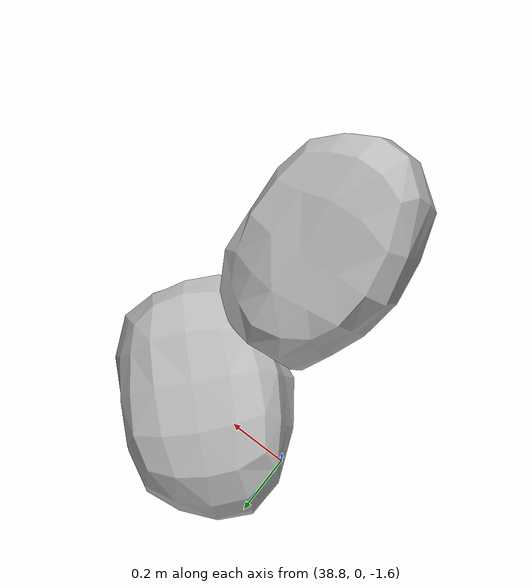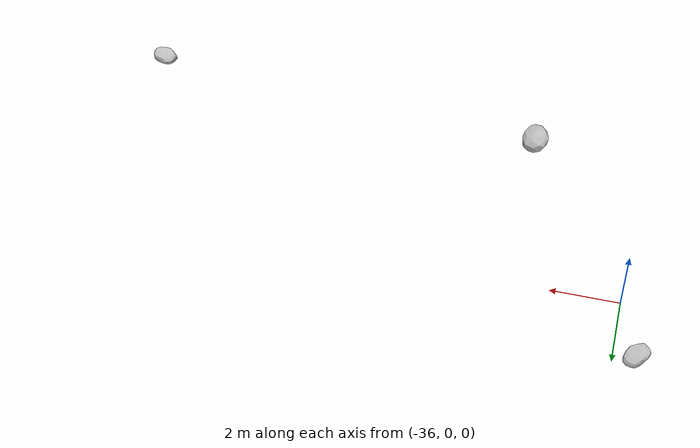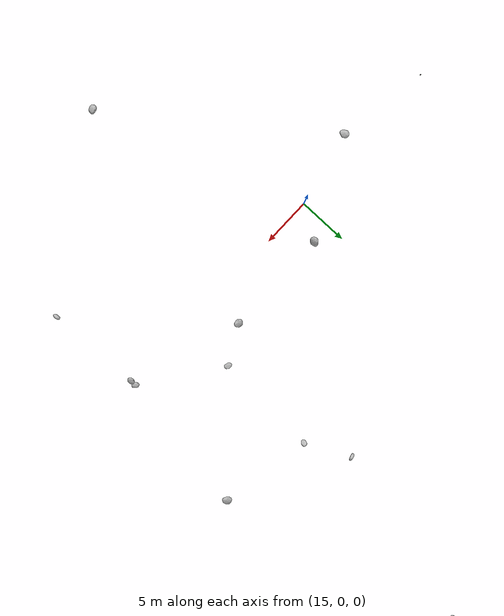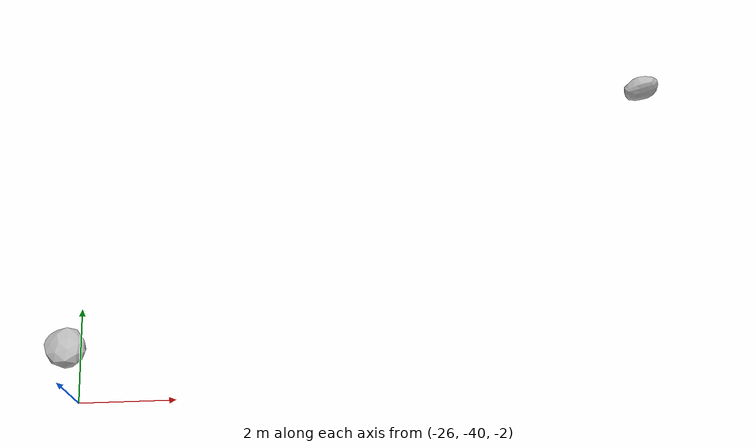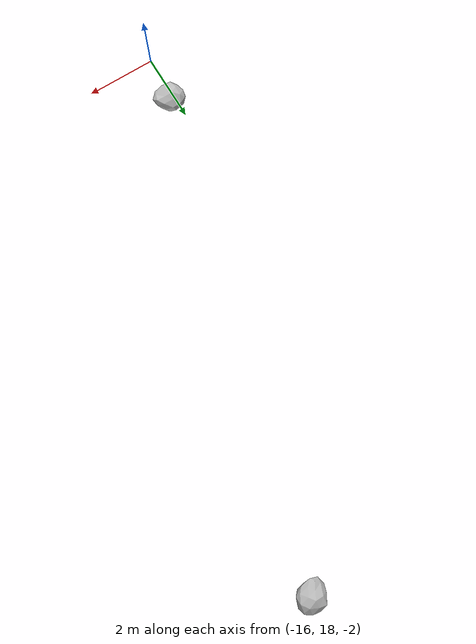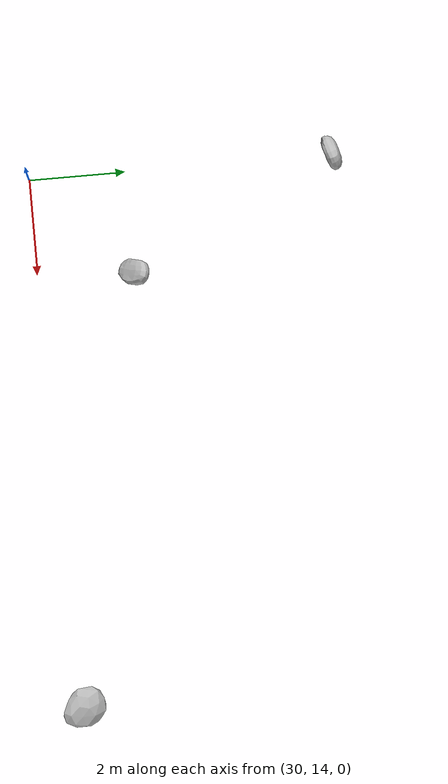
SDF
<sdf version="1.6">
 <world name="default">
  <light name="sun" type="directional">
   <pose>0 0 10 0 -0 0</pose>
   <diffuse>0.8 0.8 0.8 1</diffuse>
   <specular>0.2 0.2 0.2 1</specular>
   <attenuation>
    <range>1000</range>
    <constant>0.9</constant>
    <linear>0.01</linear>
    <quadratic>0.001</quadratic>
   </attenuation>
   <direction>-0.5 0.1 -0.9</direction>
  </light>
  <physics name="default_physics" default="0" type="ode">
   <max_step_size>0.001</max_step_size>
   <real_time_factor>1</real_time_factor>
   <real_time_update_rate>1000</real_time_update_rate>
  </physics>
  <scene>
   <ambient>0.2 0.5 0.5 1</ambient>
   <background>0.2 0.5 0.5 1</background>
   <shadows>1</shadows>
   <fog>
    <color>0.2 0.5 0.5 1</color>
    <type>linear</type>
    <start>0.1</start>
    <end>10.0</end>
    <density>0.1</density>
   </fog>
  </scene>
  <spherical_coordinates>
   <surface_model>EARTH_WGS84</surface_model>
   <latitude_deg>0</latitude_deg>
   <longitude_deg>0</longitude_deg>
   <elevation>0</elevation>
   <heading_deg>0</heading_deg>
  </spherical_coordinates>
  <gravity>0 0 -9.8</gravity>
  <magnetic_field>6e-06 2.3e-05 -4.2e-05</magnetic_field>
  <atmosphere type="adiabatic"/>
  <include><pose>0 0 5 0.0 1.4 0.0</pose><uri>model://openrov_camera</uri></include>
  <model name="RockSet_1.0_static">
   <static>1</static>
   <link name="link">
    <inertial><mass>10</mass></inertial>
    <collision name="collision">
     <geometry><mesh><uri>model://RockSet_1/meshes/RockSet.dae</uri><scale>1 1 1</scale></mesh></geometry>
    </collision>
    <visual name="visual">
     <geometry><mesh><uri>model://RockSet_1/meshes/RockSet.dae</uri><scale>1 1 1</scale></mesh></geometry>
    </visual>
   </link>
   <pose>34.5847 38.8863 -2.35179 2.94426 -0.352725 -2.03484</pose>
  </model>
  <model name="RockSet_1.1_static">
   <static>1</static>
   <link name="link">
    <inertial><mass>10</mass></inertial>
    <collision name="collision">
     <geometry><mesh><uri>model://RockSet_1/meshes/RockSet.dae</uri><scale>1 1 1</scale></mesh></geometry>
    </collision>
    <visual name="visual">
     <geometry><mesh><uri>model://RockSet_1/meshes/RockSet.dae</uri><scale>1 1 1</scale></mesh></geometry>
    </visual>
   </link>
   <pose>7.14231 -1.87016 -0.993299 0.167936 -0.043983 -1.18767</pose>
  </model>
  <model name="RockSet_1.2_static">
   <static>1</static>
   <link name="link">
    <inertial><mass>10</mass></inertial>
    <collision name="collision">
     <geometry><mesh><uri>model://RockSet_1/meshes/RockSet.dae</uri><scale>1 1 1</scale></mesh></geometry>
    </collision>
    <visual name="visual">
     <geometry><mesh><uri>model://RockSet_1/meshes/RockSet.dae</uri><scale>1 1 1</scale></mesh></geometry>
    </visual>
   </link>
   <pose>41.0386 14.1879 -0.208543 2.82504 -0.401559 -1.19861</pose>
  </model>
  <model name="RockSet_1.3_static">
   <static>1</static>
   <link name="link">
    <inertial><mass>10</mass></inertial>
    <collision name="collision">
     <geometry><mesh><uri>model://RockSet_1/meshes/RockSet.dae</uri><scale>1 1 1</scale></mesh></geometry>
    </collision>
    <visual name="visual">
     <geometry><mesh><uri>model://RockSet_1/meshes/RockSet.dae</uri><scale>1 1 1</scale></mesh></geometry>
    </visual>
   </link>
   <pose>-26.2433 -38.9187 -1.56271 3.02172 0.346167 2.42856</pose>
  </model>
  <model name="RockSet_1.4_static">
   <static>1</static>
   <link name="link">
    <inertial><mass>10</mass></inertial>
    <collision name="collision">
     <geometry><mesh><uri>model://RockSet_1/meshes/RockSet.dae</uri><scale>1 1 1</scale></mesh></geometry>
    </collision>
    <visual name="visual">
     <geometry><mesh><uri>model://RockSet_1/meshes/RockSet.dae</uri><scale>1 1 1</scale></mesh></geometry>
    </visual>
   </link>
   <pose>-45.5963 49.3919 -0.871225 -0.357338 0.23917 -1.14614</pose>
  </model>
  <model name="RockSet_1.5_static">
   <static>1</static>
   <link name="link">
    <inertial><mass>10</mass></inertial>
    <collision name="collision">
     <geometry><mesh><uri>model://RockSet_1/meshes/RockSet.dae</uri><scale>1 1 1</scale></mesh></geometry>
    </collision>
    <visual name="visual">
     <geometry><mesh><uri>model://RockSet_1/meshes/RockSet.dae</uri><scale>1 1 1</scale></mesh></geometry>
    </visual>
   </link>
   <pose>-15.8811 19.2664 -1.99254 -0.132463 -0.342997 0.057242</pose>
  </model>
  <model name="RockSet_1.6_static">
   <static>1</static>
   <link name="link">
    <inertial><mass>10</mass></inertial>
    <collision name="collision">
     <geometry><mesh><uri>model://RockSet_1/meshes/RockSet.dae</uri><scale>1 1 1</scale></mesh></geometry>
    </collision>
    <visual name="visual">
     <geometry><mesh><uri>model://RockSet_1/meshes/RockSet.dae</uri><scale>1 1 1</scale></mesh></geometry>
    </visual>
   </link>
   <pose>27.7832 3.26959 0.054588 2.76295 -0.614666 -0.516012</pose>
  </model>
  <model name="RockSet_1.7_static">
   <static>1</static>
   <link name="link">
    <inertial><mass>10</mass></inertial>
    <collision name="collision">
     <geometry><mesh><uri>model://RockSet_1/meshes/RockSet.dae</uri><scale>1 1 1</scale></mesh></geometry>
    </collision>
    <visual name="visual">
     <geometry><mesh><uri>model://RockSet_1/meshes/RockSet.dae</uri><scale>1 1 1</scale></mesh></geometry>
    </visual>
   </link>
   <pose>-11.9398 33.1081 -1.92456 0.355375 -0.356572 -2.18104</pose>
  </model>
  <model name="RockSet_1.8_static">
   <static>1</static>
   <link name="link">
    <inertial><mass>10</mass></inertial>
    <collision name="collision">
     <geometry><mesh><uri>model://RockSet_1/meshes/RockSet.dae</uri><scale>1 1 1</scale></mesh></geometry>
    </collision>
    <visual name="visual">
     <geometry><mesh><uri>model://RockSet_1/meshes/RockSet.dae</uri><scale>1 1 1</scale></mesh></geometry>
    </visual>
   </link>
   <pose>-41.3769 -30.6391 -2.22627 2.94754 0.152054 1.14321</pose>
  </model>
  <model name="RockSet_1.9_static">
   <static>1</static>
   <link name="link">
    <inertial><mass>10</mass></inertial>
    <collision name="collision">
     <geometry><mesh><uri>model://RockSet_1/meshes/RockSet.dae</uri><scale>1 1 1</scale></mesh></geometry>
    </collision>
    <visual name="visual">
     <geometry><mesh><uri>model://RockSet_1/meshes/RockSet.dae</uri><scale>1 1 1</scale></mesh></geometry>
    </visual>
   </link>
   <pose>-50.2108 -5.9066 -1.36826 2.79941 0.152892 -1.65953</pose>
  </model>
  <model name="RockSet_1.10_static">
   <static>1</static>
   <link name="link">
    <inertial><mass>10</mass></inertial>
    <collision name="collision">
     <geometry><mesh><uri>model://RockSet_1/meshes/RockSet.dae</uri><scale>1 1 1</scale></mesh></geometry>
    </collision>
    <visual name="visual">
     <geometry><mesh><uri>model://RockSet_1/meshes/RockSet.dae</uri><scale>1 1 1</scale></mesh></geometry>
    </visual>
   </link>
   <pose>36.5091 -29.1834 -2.10242 -3.12462 0.347324 2.35133</pose>
  </model>
  <model name="RockSet_1.11_static">
   <static>1</static>
   <link name="link">
    <inertial><mass>10</mass></inertial>
    <collision name="collision">
     <geometry><mesh><uri>model://RockSet_1/meshes/RockSet.dae</uri><scale>1 1 1</scale></mesh></geometry>
    </collision>
    <visual name="visual">
     <geometry><mesh><uri>model://RockSet_1/meshes/RockSet.dae</uri><scale>1 1 1</scale></mesh></geometry>
    </visual>
   </link>
   <pose>16.9713 3.23457 -0.116203 -2.61944 0.308661 1.06264</pose>
  </model>
  <model name="RockSet_1.12_static">
   <static>1</static>
   <link name="link">
    <inertial><mass>10</mass></inertial>
    <collision name="collision">
     <geometry><mesh><uri>model://RockSet_1/meshes/RockSet.dae</uri><scale>1 1 1</scale></mesh></geometry>
    </collision>
    <visual name="visual">
     <geometry><mesh><uri>model://RockSet_1/meshes/RockSet.dae</uri><scale>1 1 1</scale></mesh></geometry>
    </visual>
   </link>
   <pose>22.3055 -21.2381 -0.304194 -2.73539 -0.078711 0.700449</pose>
  </model>
  <model name="RockSet_1.13_static">
   <static>1</static>
   <link name="link">
    <inertial><mass>10</mass></inertial>
    <collision name="collision">
     <geometry><mesh><uri>model://RockSet_1/meshes/RockSet.dae</uri><scale>1 1 1</scale></mesh></geometry>
    </collision>
    <visual name="visual">
     <geometry><mesh><uri>model://RockSet_1/meshes/RockSet.dae</uri><scale>1 1 1</scale></mesh></geometry>
    </visual>
   </link>
   <pose>-32.7005 -5.94427 -0.242873 2.87999 -0.225756 -1.63962</pose>
  </model>
  <model name="RockSet_2.0_static">
   <static>1</static>
   <link name="link">
    <inertial><mass>10</mass></inertial>
    <collision name="collision">
     <geometry><mesh><uri>model://RockSet_2/meshes/RockSet.dae</uri><scale>1 1 1</scale></mesh></geometry>
    </collision>
    <visual name="visual">
     <geometry><mesh><uri>model://RockSet_2/meshes/RockSet.dae</uri><scale>1 1 1</scale></mesh></geometry>
    </visual>
   </link>
   <pose>39.4444 -10.1977 -1.16651 -1.82529 0.491307 -1.50819</pose>
  </model>
  <model name="RockSet_2.1_static">
   <static>1</static>
   <link name="link">
    <inertial><mass>10</mass></inertial>
    <collision name="collision">
     <geometry><mesh><uri>model://RockSet_2/meshes/RockSet.dae</uri><scale>1 1 1</scale></mesh></geometry>
    </collision>
    <visual name="visual">
     <geometry><mesh><uri>model://RockSet_2/meshes/RockSet.dae</uri><scale>1 1 1</scale></mesh></geometry>
    </visual>
   </link>
   <pose>39.0461 -0.552977 -1.15639 0.32769 0.378767 1.64308</pose>
  </model>
  <model name="RockSet_2.2_static">
   <static>1</static>
   <link name="link">
    <inertial><mass>10</mass></inertial>
    <collision name="collision">
     <geometry><mesh><uri>model://RockSet_2/meshes/RockSet.dae</uri><scale>1 1 1</scale></mesh></geometry>
    </collision>
    <visual name="visual">
     <geometry><mesh><uri>model://RockSet_2/meshes/RockSet.dae</uri><scale>1 1 1</scale></mesh></geometry>
    </visual>
   </link>
   <pose>39.126 0.002374 -1.32574 2.9756 0.018875 -0.775484</pose>
  </model>
  <model name="RockSet_2.3_static">
   <static>1</static>
   <link name="link">
    <inertial><mass>10</mass></inertial>
    <collision name="collision">
     <geometry><mesh><uri>model://RockSet_2/meshes/RockSet.dae</uri><scale>1 1 1</scale></mesh></geometry>
    </collision>
    <visual name="visual">
     <geometry><mesh><uri>model://RockSet_2/meshes/RockSet.dae</uri><scale>1 1 1</scale></mesh></geometry>
    </visual>
   </link>
   <pose>31.9535 16.0063 -1.53874 0.093688 0.687012 -1.85804</pose>
  </model>
  <model name="RockSet_2.4_static">
   <static>1</static>
   <link name="link">
    <inertial><mass>10</mass></inertial>
    <collision name="collision">
     <geometry><mesh><uri>model://RockSet_2/meshes/RockSet.dae</uri><scale>1 1 1</scale></mesh></geometry>
    </collision>
    <visual name="visual">
     <geometry><mesh><uri>model://RockSet_2/meshes/RockSet.dae</uri><scale>1 1 1</scale></mesh></geometry>
    </visual>
   </link>
   <pose>-20.6836 -6.23342 0.384446 0.189759 0.020385 2.87336</pose>
  </model>
  <model name="RockSet_2.5_static">
   <static>1</static>
   <link name="link">
    <inertial><mass>10</mass></inertial>
    <collision name="collision">
     <geometry><mesh><uri>model://RockSet_2/meshes/RockSet.dae</uri><scale>1 1 1</scale></mesh></geometry>
    </collision>
    <visual name="visual">
     <geometry><mesh><uri>model://RockSet_2/meshes/RockSet.dae</uri><scale>1 1 1</scale></mesh></geometry>
    </visual>
   </link>
   <pose>-13.6064 -33.1887 -2.26899 2.15119 0.135381 -2.94974</pose>
  </model>
  <model name="RockSet_2.6_static">
   <static>1</static>
   <link name="link">
    <inertial><mass>10</mass></inertial>
    <collision name="collision">
     <geometry><mesh><uri>model://RockSet_2/meshes/RockSet.dae</uri><scale>1 1 1</scale></mesh></geometry>
    </collision>
    <visual name="visual">
     <geometry><mesh><uri>model://RockSet_2/meshes/RockSet.dae</uri><scale>1 1 1</scale></mesh></geometry>
    </visual>
   </link>
   <pose>20.8763 54.471 -2.36982 3.08868 -0.005015 2.14857</pose>
  </model>
  <model name="RockSet_2.7_static">
   <static>1</static>
   <link name="link">
    <inertial><mass>10</mass></inertial>
    <collision name="collision">
     <geometry><mesh><uri>model://RockSet_2/meshes/RockSet.dae</uri><scale>1 1 1</scale></mesh></geometry>
    </collision>
    <visual name="visual">
     <geometry><mesh><uri>model://RockSet_2/meshes/RockSet.dae</uri><scale>1 1 1</scale></mesh></geometry>
    </visual>
   </link>
   <pose>-13.5682 -20.6666 -1.2895 0.008951 0.083991 0.095925</pose>
  </model>
  <model name="RockSet_2.8_static">
   <static>1</static>
   <link name="link">
    <inertial><mass>10</mass></inertial>
    <collision name="collision">
     <geometry><mesh><uri>model://RockSet_2/meshes/RockSet.dae</uri><scale>1 1 1</scale></mesh></geometry>
    </collision>
    <visual name="visual">
     <geometry><mesh><uri>model://RockSet_2/meshes/RockSet.dae</uri><scale>1 1 1</scale></mesh></geometry>
    </visual>
   </link>
   <pose>21.7866 -41.7615 -2.43813 0.789175 -0.273448 0.104092</pose>
  </model>
  <model name="RockSet_2.9_static">
   <static>1</static>
   <link name="link">
    <inertial><mass>10</mass></inertial>
    <collision name="collision">
     <geometry><mesh><uri>model://RockSet_2/meshes/RockSet.dae</uri><scale>1 1 1</scale></mesh></geometry>
    </collision>
    <visual name="visual">
     <geometry><mesh><uri>model://RockSet_2/meshes/RockSet.dae</uri><scale>1 1 1</scale></mesh></geometry>
    </visual>
   </link>
   <pose>45.2866 -45.6984 -1.59653 -0.166355 0.114407 -2.91145</pose>
  </model>
  <model name="RockSet_2.10_static">
   <static>1</static>
   <link name="link">
    <inertial><mass>10</mass></inertial>
    <collision name="collision">
     <geometry><mesh><uri>model://RockSet_2/meshes/RockSet.dae</uri><scale>1 1 1</scale></mesh></geometry>
    </collision>
    <visual name="visual">
     <geometry><mesh><uri>model://RockSet_2/meshes/RockSet.dae</uri><scale>1 1 1</scale></mesh></geometry>
    </visual>
   </link>
   <pose>29.6992 20.4465 -1.7766 -1.64991 0.400889 -2.88167</pose>
  </model>
  <model name="RockSet_2.11_static">
   <static>1</static>
   <link name="link">
    <inertial><mass>10</mass></inertial>
    <collision name="collision">
     <geometry><mesh><uri>model://RockSet_2/meshes/RockSet.dae</uri><scale>1 1 1</scale></mesh></geometry>
    </collision>
    <visual name="visual">
     <geometry><mesh><uri>model://RockSet_2/meshes/RockSet.dae</uri><scale>1 1 1</scale></mesh></geometry>
    </visual>
   </link>
   <pose>-36.602 2.23505 0.812008 0.13982 -0.329043 -2.29357</pose>
  </model>
  <model name="RockSet_2.12_static">
   <static>1</static>
   <link name="link">
    <inertial><mass>10</mass></inertial>
    <collision name="collision">
     <geometry><mesh><uri>model://RockSet_2/meshes/RockSet.dae</uri><scale>1 1 1</scale></mesh></geometry>
    </collision>
    <visual name="visual">
     <geometry><mesh><uri>model://RockSet_2/meshes/RockSet.dae</uri><scale>1 1 1</scale></mesh></geometry>
    </visual>
   </link>
   <pose>31.5176 5.3548 -1.21238 -0.026023 -0.010306 -0.287627</pose>
  </model>
  <model name="RockSet_2.13_static">
   <static>1</static>
   <link name="link">
    <inertial><mass>10</mass></inertial>
    <collision name="collision">
     <geometry><mesh><uri>model://RockSet_2/meshes/RockSet.dae</uri><scale>1 1 1</scale></mesh></geometry>
    </collision>
    <visual name="visual">
     <geometry><mesh><uri>model://RockSet_2/meshes/RockSet.dae</uri><scale>1 1 1</scale></mesh></geometry>
    </visual>
   </link>
   <pose>-28.4452 38.2536 -0.649258 0.408125 0.27763 0.174938</pose>
  </model>
 </world>
</sdf>

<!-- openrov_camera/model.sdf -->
<sdf version="1.5">
    <model name='movable_camera'>
      <pose frame=''>0 0 5 0.0 1.20 0.0</pose>
      <link name='link'>
        <inertial>
          <mass>0.1</mass>
          <inertia>
            <ixx>0.000166667</ixx>
            <iyy>0.000166667</iyy>
            <izz>0.000166667</izz>
            <ixy>0</ixy>
            <ixz>0</ixz>
            <iyz>0</iyz>
          </inertia>
        </inertial>
        <collision name='collision'>
          <geometry>
            <box>
              <size>0.1 0.1 0.1</size>
            </box>
          </geometry>
          <max_contacts>10</max_contacts>
          <surface>
            <contact>
              <ode/>
            </contact>
            <bounce/>
            <friction>
              <ode/>
            </friction>
          </surface>
        </collision>
        <visual name='visual'>
          <geometry>
            <box>
              <size>0.1 0.1 0.1</size>
            </box>
          </geometry>
          <material>
            <script>
              <name>Gazebo/Black</name>
            </script>
          </material>
        </visual>
        <sensor name='camera1' type='camera'>
          <camera name='__default__'>
            <horizontal_fov>2.0943</horizontal_fov>
            <image>
              <width>1280</width>
	      <!-->seria 180, pero a lsd_slam no le gusta que no sea multiplo de 16, porque sea?<-->
              <height>720</height>
            </image>
            <clip>
              <near>0.1</near>
              <far>100</far>
            </clip>
            <save enabled='false'>
              <path>/home/emanuel/Descargas</path>
            </save>
	    <distortion>
		<k1>0.012107108529057053</k1>
		<k2>-0.021012380816722260</k2>
		<p1>0.0</p1>
		<p2>0.0</p2>
		<k3>0.0032618477474296100</k3>
	    </distortion>
          </camera>
          <always_on>1</always_on>
	  <!-- update rate no tiene que estar, jode con la
          visualizacion en la camara de la onda caustica-->
          <visualize>true</visualize>
          <plugin name='camera_controller' filename='libgazebo_ros_camera.so'>
            <alwaysOn>true</alwaysOn>
            <updateRate>30.0</updateRate>
            <cameraName>movable_camera</cameraName>
            <imageTopicName>image_raw</imageTopicName>
            <cameraInfoTopicName>camera_info</cameraInfoTopicName>
            <frameName>camera</frameName>
            <hackBaseline>0.07</hackBaseline>
            <distortionK1>0.0</distortionK1>
            <distortionK2>0.0</distortionK2>
            <distortionK3>0.0</distortionK3>
            <distortionT1>0.0</distortionT1>
            <distortionT2>0.0</distortionT2>
          </plugin>
        </sensor>
        <self_collide>0</self_collide>
        <kinematic>0</kinematic>
        <gravity>0</gravity>
      </link>
      <plugin name='object_controller' filename='libgazebo_ros_planar_move.so'>
        <commandTopic>movable_camera/cmd_vel</commandTopic>
        <odometryTopic>movable_camera/odom</odometryTopic>
        <odometryFrame>odom</odometryFrame>
        <odometryRate>20.0</odometryRate>
        <robotBaseFrame>link</robotBaseFrame>
      </plugin>
    </model>
</sdf>
